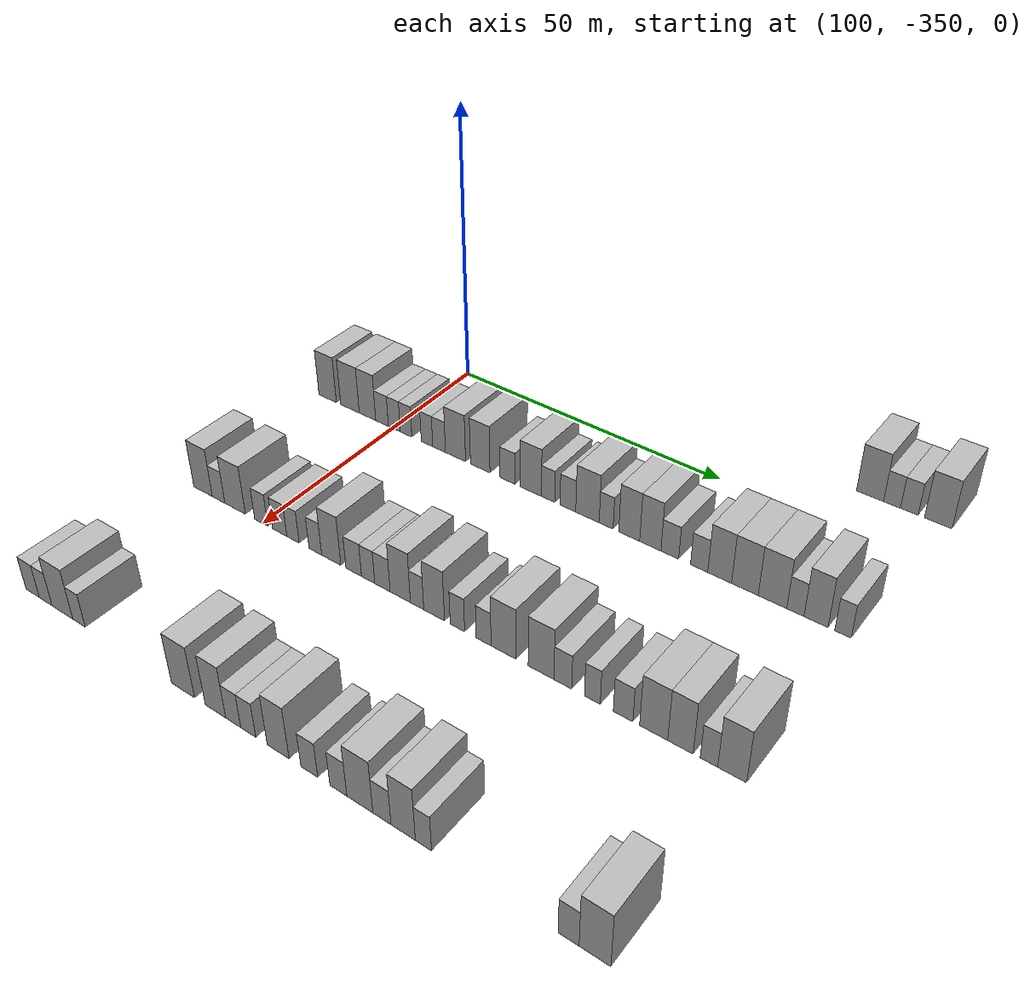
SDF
<sdf version="1.6">
 <world name="default">
  <model name="building_510">
   <static>1</static>
   <pose>85.0000 -279.2322 0 0.000000 0.000000 0.000000</pose>
   <link name="link">
    <pose>0 0 4.50 0 0 0</pose>
    <collision name="collision"><geometry><box><size>10.0000 4.4738 9.0000</size></box></geometry></collision>
    <visual name="visual">
     <cast_shadows>0</cast_shadows>
     <geometry><box><size>10.0000 4.4738 9.0000</size></box></geometry>
     <material>
      <script>
       <uri>model://HANNAS_wall/materials/scripts</uri>
       <uri>model://HANNAS_wall/materials/textures</uri>
       <name>vrc/HANNAS_wall</name>
      </script>
     </material>
    </visual>
   </link>
  </model>
  <model name="building_511">
   <static>1</static>
   <pose>85.0000 -275.6254 0 0.000000 0.000000 0.000000</pose>
   <link name="link">
    <pose>0 0 3.00 0 0 0</pose>
    <collision name="collision"><geometry><box><size>10.0000 2.7398 6.0000</size></box></geometry></collision>
    <visual name="visual">
     <cast_shadows>0</cast_shadows>
     <geometry><box><size>10.0000 2.7398 6.0000</size></box></geometry>
     <material>
      <script>
       <uri>model://HANNAS_wall/materials/scripts</uri>
       <uri>model://HANNAS_wall/materials/textures</uri>
       <name>vrc/HANNAS_wall</name>
      </script>
     </material>
    </visual>
   </link>
  </model>
  <model name="building_512">
   <static>1</static>
   <pose>85.0000 -272.8362 0 0.000000 0.000000 0.000000</pose>
   <link name="link">
    <pose>0 0 3.00 0 0 0</pose>
    <collision name="collision"><geometry><box><size>10.0000 2.8386 6.0000</size></box></geometry></collision>
    <visual name="visual">
     <cast_shadows>0</cast_shadows>
     <geometry><box><size>10.0000 2.8386 6.0000</size></box></geometry>
     <material>
      <script>
       <uri>model://HANNAS_wall/materials/scripts</uri>
       <uri>model://HANNAS_wall/materials/textures</uri>
       <name>vrc/HANNAS_wall</name>
      </script>
     </material>
    </visual>
   </link>
  </model>
  <model name="building_513">
   <static>1</static>
   <pose>85.0000 -268.2514 0 0.000000 0.000000 0.000000</pose>
   <link name="link">
    <pose>0 0 4.50 0 0 0</pose>
    <collision name="collision"><geometry><box><size>10.0000 4.3310 9.0000</size></box></geometry></collision>
    <visual name="visual">
     <cast_shadows>0</cast_shadows>
     <geometry><box><size>10.0000 4.3310 9.0000</size></box></geometry>
     <material>
      <script>
       <uri>model://HANNAS_wall/materials/scripts</uri>
       <uri>model://HANNAS_wall/materials/textures</uri>
       <name>vrc/HANNAS_wall</name>
      </script>
     </material>
    </visual>
   </link>
  </model>
  <model name="building_725">
   <static>1</static>
   <pose>115.0000 -364.7723 0 0.000000 0.000000 0.000000</pose>
   <link name="link">
    <pose>0 0 4.50 0 0 0</pose>
    <collision name="collision"><geometry><box><size>10.0000 3.9995 9.0000</size></box></geometry></collision>
    <visual name="visual">
     <cast_shadows>0</cast_shadows>
     <geometry><box><size>10.0000 3.9995 9.0000</size></box></geometry>
     <material>
      <script>
       <uri>model://HANNAS_wall/materials/scripts</uri>
       <uri>model://HANNAS_wall/materials/textures</uri>
       <name>vrc/HANNAS_wall</name>
      </script>
     </material>
    </visual>
   </link>
  </model>
  <model name="building_726">
   <static>1</static>
   <pose>115.0000 -359.6776 0 0.000000 0.000000 0.000000</pose>
   <link name="link">
    <pose>0 0 4.50 0 0 0</pose>
    <collision name="collision"><geometry><box><size>10.0000 4.1899 9.0000</size></box></geometry></collision>
    <visual name="visual">
     <cast_shadows>0</cast_shadows>
     <geometry><box><size>10.0000 4.1899 9.0000</size></box></geometry>
     <material>
      <script>
       <uri>model://HANNAS_wall/materials/scripts</uri>
       <uri>model://HANNAS_wall/materials/textures</uri>
       <name>vrc/HANNAS_wall</name>
      </script>
     </material>
    </visual>
   </link>
  </model>
  <model name="building_727">
   <static>1</static>
   <pose>115.0000 -355.7517 0 0.000000 0.000000 0.000000</pose>
   <link name="link">
    <pose>0 0 4.50 0 0 0</pose>
    <collision name="collision"><geometry><box><size>10.0000 3.6618 9.0000</size></box></geometry></collision>
    <visual name="visual">
     <cast_shadows>0</cast_shadows>
     <geometry><box><size>10.0000 3.6618 9.0000</size></box></geometry>
     <material>
      <script>
       <uri>model://HANNAS_wall/materials/scripts</uri>
       <uri>model://HANNAS_wall/materials/textures</uri>
       <name>vrc/HANNAS_wall</name>
      </script>
     </material>
    </visual>
   </link>
  </model>
  <model name="building_728">
   <static>1</static>
   <pose>115.0000 -352.5286 0 0.000000 0.000000 0.000000</pose>
   <link name="link">
    <pose>0 0 3.00 0 0 0</pose>
    <collision name="collision"><geometry><box><size>10.0000 2.7844 6.0000</size></box></geometry></collision>
    <visual name="visual">
     <cast_shadows>0</cast_shadows>
     <geometry><box><size>10.0000 2.7844 6.0000</size></box></geometry>
     <material>
      <script>
       <uri>model://HANNAS_wall/materials/scripts</uri>
       <uri>model://HANNAS_wall/materials/textures</uri>
       <name>vrc/HANNAS_wall</name>
      </script>
     </material>
    </visual>
   </link>
  </model>
  <model name="building_729">
   <static>1</static>
   <pose>115.0000 -349.8537 0 0.000000 0.000000 0.000000</pose>
   <link name="link">
    <pose>0 0 3.00 0 0 0</pose>
    <collision name="collision"><geometry><box><size>10.0000 2.5655 6.0000</size></box></geometry></collision>
    <visual name="visual">
     <cast_shadows>0</cast_shadows>
     <geometry><box><size>10.0000 2.5655 6.0000</size></box></geometry>
     <material>
      <script>
       <uri>model://HANNAS_wall/materials/scripts</uri>
       <uri>model://HANNAS_wall/materials/textures</uri>
       <name>vrc/HANNAS_wall</name>
      </script>
     </material>
    </visual>
   </link>
  </model>
  <model name="building_730">
   <static>1</static>
   <pose>115.0000 -347.3311 0 0.000000 0.000000 0.000000</pose>
   <link name="link">
    <pose>0 0 3.00 0 0 0</pose>
    <collision name="collision"><geometry><box><size>10.0000 2.4797 6.0000</size></box></geometry></collision>
    <visual name="visual">
     <cast_shadows>0</cast_shadows>
     <geometry><box><size>10.0000 2.4797 6.0000</size></box></geometry>
     <material>
      <script>
       <uri>model://HANNAS_wall/materials/scripts</uri>
       <uri>model://HANNAS_wall/materials/textures</uri>
       <name>vrc/HANNAS_wall</name>
      </script>
     </material>
    </visual>
   </link>
  </model>
  <model name="building_731">
   <static>1</static>
   <pose>115.0000 -342.8879 0 0.000000 0.000000 0.000000</pose>
   <link name="link">
    <pose>0 0 3.00 0 0 0</pose>
    <collision name="collision"><geometry><box><size>10.0000 2.4067 6.0000</size></box></geometry></collision>
    <visual name="visual">
     <cast_shadows>0</cast_shadows>
     <geometry><box><size>10.0000 2.4067 6.0000</size></box></geometry>
     <material>
      <script>
       <uri>model://HANNAS_wall/materials/scripts</uri>
       <uri>model://HANNAS_wall/materials/textures</uri>
       <name>vrc/HANNAS_wall</name>
      </script>
     </material>
    </visual>
   </link>
  </model>
  <model name="building_732">
   <static>1</static>
   <pose>115.0000 -340.3588 0 0.000000 0.000000 0.000000</pose>
   <link name="link">
    <pose>0 0 3.00 0 0 0</pose>
    <collision name="collision"><geometry><box><size>10.0000 2.6515 6.0000</size></box></geometry></collision>
    <visual name="visual">
     <cast_shadows>0</cast_shadows>
     <geometry><box><size>10.0000 2.6515 6.0000</size></box></geometry>
     <material>
      <script>
       <uri>model://HANNAS_wall/materials/scripts</uri>
       <uri>model://HANNAS_wall/materials/textures</uri>
       <name>vrc/HANNAS_wall</name>
      </script>
     </material>
    </visual>
   </link>
  </model>
  <model name="building_733">
   <static>1</static>
   <pose>115.0000 -336.9789 0 0.000000 0.000000 0.000000</pose>
   <link name="link">
    <pose>0 0 4.50 0 0 0</pose>
    <collision name="collision"><geometry><box><size>10.0000 4.1082 9.0000</size></box></geometry></collision>
    <visual name="visual">
     <cast_shadows>0</cast_shadows>
     <geometry><box><size>10.0000 4.1082 9.0000</size></box></geometry>
     <material>
      <script>
       <uri>model://HANNAS_wall/materials/scripts</uri>
       <uri>model://HANNAS_wall/materials/textures</uri>
       <name>vrc/HANNAS_wall</name>
      </script>
     </material>
    </visual>
   </link>
  </model>
  <model name="building_734">
   <static>1</static>
   <pose>115.0000 -331.9779 0 0.000000 0.000000 0.000000</pose>
   <link name="link">
    <pose>0 0 4.50 0 0 0</pose>
    <collision name="collision"><geometry><box><size>10.0000 3.8938 9.0000</size></box></geometry></collision>
    <visual name="visual">
     <cast_shadows>0</cast_shadows>
     <geometry><box><size>10.0000 3.8938 9.0000</size></box></geometry>
     <material>
      <script>
       <uri>model://HANNAS_wall/materials/scripts</uri>
       <uri>model://HANNAS_wall/materials/textures</uri>
       <name>vrc/HANNAS_wall</name>
      </script>
     </material>
    </visual>
   </link>
  </model>
  <model name="building_735">
   <static>1</static>
   <pose>115.0000 -326.5730 0 0.000000 0.000000 0.000000</pose>
   <link name="link">
    <pose>0 0 3.00 0 0 0</pose>
    <collision name="collision"><geometry><box><size>10.0000 2.9161 6.0000</size></box></geometry></collision>
    <visual name="visual">
     <cast_shadows>0</cast_shadows>
     <geometry><box><size>10.0000 2.9161 6.0000</size></box></geometry>
     <material>
      <script>
       <uri>model://HANNAS_wall/materials/scripts</uri>
       <uri>model://HANNAS_wall/materials/textures</uri>
       <name>vrc/HANNAS_wall</name>
      </script>
     </material>
    </visual>
   </link>
  </model>
  <model name="building_736">
   <static>1</static>
   <pose>115.0000 -322.0862 0 0.000000 0.000000 0.000000</pose>
   <link name="link">
    <pose>0 0 4.50 0 0 0</pose>
    <collision name="collision"><geometry><box><size>10.0000 4.0576 9.0000</size></box></geometry></collision>
    <visual name="visual">
     <cast_shadows>0</cast_shadows>
     <geometry><box><size>10.0000 4.0576 9.0000</size></box></geometry>
     <material>
      <script>
       <uri>model://HANNAS_wall/materials/scripts</uri>
       <uri>model://HANNAS_wall/materials/textures</uri>
       <name>vrc/HANNAS_wall</name>
      </script>
     </material>
    </visual>
   </link>
  </model>
  <model name="building_737">
   <static>1</static>
   <pose>115.0000 -318.8080 0 0.000000 0.000000 0.000000</pose>
   <link name="link">
    <pose>0 0 3.00 0 0 0</pose>
    <collision name="collision"><geometry><box><size>10.0000 2.4987 6.0000</size></box></geometry></collision>
    <visual name="visual">
     <cast_shadows>0</cast_shadows>
     <geometry><box><size>10.0000 2.4987 6.0000</size></box></geometry>
     <material>
      <script>
       <uri>model://HANNAS_wall/materials/scripts</uri>
       <uri>model://HANNAS_wall/materials/textures</uri>
       <name>vrc/HANNAS_wall</name>
      </script>
     </material>
    </visual>
   </link>
  </model>
  <model name="building_738">
   <static>1</static>
   <pose>115.0000 -315.1104 0 0.000000 0.000000 0.000000</pose>
   <link name="link">
    <pose>0 0 3.00 0 0 0</pose>
    <collision name="collision"><geometry><box><size>10.0000 2.8964 6.0000</size></box></geometry></collision>
    <visual name="visual">
     <cast_shadows>0</cast_shadows>
     <geometry><box><size>10.0000 2.8964 6.0000</size></box></geometry>
     <material>
      <script>
       <uri>model://HANNAS_wall/materials/scripts</uri>
       <uri>model://HANNAS_wall/materials/textures</uri>
       <name>vrc/HANNAS_wall</name>
      </script>
     </material>
    </visual>
   </link>
  </model>
  <model name="building_739">
   <static>1</static>
   <pose>115.0000 -311.5254 0 0.000000 0.000000 0.000000</pose>
   <link name="link">
    <pose>0 0 4.50 0 0 0</pose>
    <collision name="collision"><geometry><box><size>10.0000 4.2738 9.0000</size></box></geometry></collision>
    <visual name="visual">
     <cast_shadows>0</cast_shadows>
     <geometry><box><size>10.0000 4.2738 9.0000</size></box></geometry>
     <material>
      <script>
       <uri>model://HANNAS_wall/materials/scripts</uri>
       <uri>model://HANNAS_wall/materials/textures</uri>
       <name>vrc/HANNAS_wall</name>
      </script>
     </material>
    </visual>
   </link>
  </model>
  <model name="building_740">
   <static>1</static>
   <pose>115.0000 -308.1444 0 0.000000 0.000000 0.000000</pose>
   <link name="link">
    <pose>0 0 3.00 0 0 0</pose>
    <collision name="collision"><geometry><box><size>10.0000 2.4882 6.0000</size></box></geometry></collision>
    <visual name="visual">
     <cast_shadows>0</cast_shadows>
     <geometry><box><size>10.0000 2.4882 6.0000</size></box></geometry>
     <material>
      <script>
       <uri>model://HANNAS_wall/materials/scripts</uri>
       <uri>model://HANNAS_wall/materials/textures</uri>
       <name>vrc/HANNAS_wall</name>
      </script>
     </material>
    </visual>
   </link>
  </model>
  <model name="building_741">
   <static>1</static>
   <pose>115.0000 -304.0598 0 0.000000 0.000000 0.000000</pose>
   <link name="link">
    <pose>0 0 4.50 0 0 0</pose>
    <collision name="collision"><geometry><box><size>10.0000 3.6809 9.0000</size></box></geometry></collision>
    <visual name="visual">
     <cast_shadows>0</cast_shadows>
     <geometry><box><size>10.0000 3.6809 9.0000</size></box></geometry>
     <material>
      <script>
       <uri>model://HANNAS_wall/materials/scripts</uri>
       <uri>model://HANNAS_wall/materials/textures</uri>
       <name>vrc/HANNAS_wall</name>
      </script>
     </material>
    </visual>
   </link>
  </model>
  <model name="building_742">
   <static>1</static>
   <pose>115.0000 -300.3858 0 0.000000 0.000000 0.000000</pose>
   <link name="link">
    <pose>0 0 4.50 0 0 0</pose>
    <collision name="collision"><geometry><box><size>10.0000 3.6670 9.0000</size></box></geometry></collision>
    <visual name="visual">
     <cast_shadows>0</cast_shadows>
     <geometry><box><size>10.0000 3.6670 9.0000</size></box></geometry>
     <material>
      <script>
       <uri>model://HANNAS_wall/materials/scripts</uri>
       <uri>model://HANNAS_wall/materials/textures</uri>
       <name>vrc/HANNAS_wall</name>
      </script>
     </material>
    </visual>
   </link>
  </model>
  <model name="building_743">
   <static>1</static>
   <pose>115.0000 -297.0546 0 0.000000 0.000000 0.000000</pose>
   <link name="link">
    <pose>0 0 3.00 0 0 0</pose>
    <collision name="collision"><geometry><box><size>10.0000 2.9954 6.0000</size></box></geometry></collision>
    <visual name="visual">
     <cast_shadows>0</cast_shadows>
     <geometry><box><size>10.0000 2.9954 6.0000</size></box></geometry>
     <material>
      <script>
       <uri>model://HANNAS_wall/materials/scripts</uri>
       <uri>model://HANNAS_wall/materials/textures</uri>
       <name>vrc/HANNAS_wall</name>
      </script>
     </material>
    </visual>
   </link>
  </model>
  <model name="building_744">
   <static>1</static>
   <pose>115.0000 -292.1378 0 0.000000 0.000000 0.000000</pose>
   <link name="link">
    <pose>0 0 3.00 0 0 0</pose>
    <collision name="collision"><geometry><box><size>10.0000 2.8382 6.0000</size></box></geometry></collision>
    <visual name="visual">
     <cast_shadows>0</cast_shadows>
     <geometry><box><size>10.0000 2.8382 6.0000</size></box></geometry>
     <material>
      <script>
       <uri>model://HANNAS_wall/materials/scripts</uri>
       <uri>model://HANNAS_wall/materials/textures</uri>
       <name>vrc/HANNAS_wall</name>
      </script>
     </material>
    </visual>
   </link>
  </model>
  <model name="building_745">
   <static>1</static>
   <pose>115.0000 -288.7767 0 0.000000 0.000000 0.000000</pose>
   <link name="link">
    <pose>0 0 4.50 0 0 0</pose>
    <collision name="collision"><geometry><box><size>10.0000 3.8839 9.0000</size></box></geometry></collision>
    <visual name="visual">
     <cast_shadows>0</cast_shadows>
     <geometry><box><size>10.0000 3.8839 9.0000</size></box></geometry>
     <material>
      <script>
       <uri>model://HANNAS_wall/materials/scripts</uri>
       <uri>model://HANNAS_wall/materials/textures</uri>
       <name>vrc/HANNAS_wall</name>
      </script>
     </material>
    </visual>
   </link>
  </model>
  <model name="building_746">
   <static>1</static>
   <pose>115.0000 -284.7087 0 0.000000 0.000000 0.000000</pose>
   <link name="link">
    <pose>0 0 4.50 0 0 0</pose>
    <collision name="collision"><geometry><box><size>10.0000 4.2521 9.0000</size></box></geometry></collision>
    <visual name="visual">
     <cast_shadows>0</cast_shadows>
     <geometry><box><size>10.0000 4.2521 9.0000</size></box></geometry>
     <material>
      <script>
       <uri>model://HANNAS_wall/materials/scripts</uri>
       <uri>model://HANNAS_wall/materials/textures</uri>
       <name>vrc/HANNAS_wall</name>
      </script>
     </material>
    </visual>
   </link>
  </model>
  <model name="building_747">
   <static>1</static>
   <pose>115.0000 -280.3536 0 0.000000 0.000000 0.000000</pose>
   <link name="link">
    <pose>0 0 4.50 0 0 0</pose>
    <collision name="collision"><geometry><box><size>10.0000 4.4581 9.0000</size></box></geometry></collision>
    <visual name="visual">
     <cast_shadows>0</cast_shadows>
     <geometry><box><size>10.0000 4.4581 9.0000</size></box></geometry>
     <material>
      <script>
       <uri>model://HANNAS_wall/materials/scripts</uri>
       <uri>model://HANNAS_wall/materials/textures</uri>
       <name>vrc/HANNAS_wall</name>
      </script>
     </material>
    </visual>
   </link>
  </model>
  <model name="building_748">
   <static>1</static>
   <pose>115.0000 -276.8065 0 0.000000 0.000000 0.000000</pose>
   <link name="link">
    <pose>0 0 3.00 0 0 0</pose>
    <collision name="collision"><geometry><box><size>10.0000 2.6362 6.0000</size></box></geometry></collision>
    <visual name="visual">
     <cast_shadows>0</cast_shadows>
     <geometry><box><size>10.0000 2.6362 6.0000</size></box></geometry>
     <material>
      <script>
       <uri>model://HANNAS_wall/materials/scripts</uri>
       <uri>model://HANNAS_wall/materials/textures</uri>
       <name>vrc/HANNAS_wall</name>
      </script>
     </material>
    </visual>
   </link>
  </model>
  <model name="building_749">
   <static>1</static>
   <pose>115.0000 -273.6818 0 0.000000 0.000000 0.000000</pose>
   <link name="link">
    <pose>0 0 4.50 0 0 0</pose>
    <collision name="collision"><geometry><box><size>10.0000 3.6133 9.0000</size></box></geometry></collision>
    <visual name="visual">
     <cast_shadows>0</cast_shadows>
     <geometry><box><size>10.0000 3.6133 9.0000</size></box></geometry>
     <material>
      <script>
       <uri>model://HANNAS_wall/materials/scripts</uri>
       <uri>model://HANNAS_wall/materials/textures</uri>
       <name>vrc/HANNAS_wall</name>
      </script>
     </material>
    </visual>
   </link>
  </model>
  <model name="building_750">
   <static>1</static>
   <pose>115.0000 -269.6602 0 0.000000 0.000000 0.000000</pose>
   <link name="link">
    <pose>0 0 3.00 0 0 0</pose>
    <collision name="collision"><geometry><box><size>10.0000 2.4300 6.0000</size></box></geometry></collision>
    <visual name="visual">
     <cast_shadows>0</cast_shadows>
     <geometry><box><size>10.0000 2.4300 6.0000</size></box></geometry>
     <material>
      <script>
       <uri>model://HANNAS_wall/materials/scripts</uri>
       <uri>model://HANNAS_wall/materials/textures</uri>
       <name>vrc/HANNAS_wall</name>
      </script>
     </material>
    </visual>
   </link>
  </model>
  <model name="building_956">
   <static>1</static>
   <pose>145.0000 -362.9997 0 0.000000 0.000000 0.000000</pose>
   <link name="link">
    <pose>0 0 4.50 0 0 0</pose>
    <collision name="collision"><geometry><box><size>10.0000 4.0976 9.0000</size></box></geometry></collision>
    <visual name="visual">
     <cast_shadows>0</cast_shadows>
     <geometry><box><size>10.0000 4.0976 9.0000</size></box></geometry>
     <material>
      <script>
       <uri>model://HANNAS_wall/materials/scripts</uri>
       <uri>model://HANNAS_wall/materials/textures</uri>
       <name>vrc/HANNAS_wall</name>
      </script>
     </material>
    </visual>
   </link>
  </model>
  <model name="building_957">
   <static>1</static>
   <pose>145.0000 -359.5647 0 0.000000 0.000000 0.000000</pose>
   <link name="link">
    <pose>0 0 3.00 0 0 0</pose>
    <collision name="collision"><geometry><box><size>10.0000 2.7725 6.0000</size></box></geometry></collision>
    <visual name="visual">
     <cast_shadows>0</cast_shadows>
     <geometry><box><size>10.0000 2.7725 6.0000</size></box></geometry>
     <material>
      <script>
       <uri>model://HANNAS_wall/materials/scripts</uri>
       <uri>model://HANNAS_wall/materials/textures</uri>
       <name>vrc/HANNAS_wall</name>
      </script>
     </material>
    </visual>
   </link>
  </model>
  <model name="building_958">
   <static>1</static>
   <pose>145.0000 -355.9636 0 0.000000 0.000000 0.000000</pose>
   <link name="link">
    <pose>0 0 4.50 0 0 0</pose>
    <collision name="collision"><geometry><box><size>10.0000 4.4298 9.0000</size></box></geometry></collision>
    <visual name="visual">
     <cast_shadows>0</cast_shadows>
     <geometry><box><size>10.0000 4.4298 9.0000</size></box></geometry>
     <material>
      <script>
       <uri>model://HANNAS_wall/materials/scripts</uri>
       <uri>model://HANNAS_wall/materials/textures</uri>
       <name>vrc/HANNAS_wall</name>
      </script>
     </material>
    </visual>
   </link>
  </model>
  <model name="building_959">
   <static>1</static>
   <pose>145.0000 -350.3635 0 0.000000 0.000000 0.000000</pose>
   <link name="link">
    <pose>0 0 3.00 0 0 0</pose>
    <collision name="collision"><geometry><box><size>10.0000 2.7702 6.0000</size></box></geometry></collision>
    <visual name="visual">
     <cast_shadows>0</cast_shadows>
     <geometry><box><size>10.0000 2.7702 6.0000</size></box></geometry>
     <material>
      <script>
       <uri>model://HANNAS_wall/materials/scripts</uri>
       <uri>model://HANNAS_wall/materials/textures</uri>
       <name>vrc/HANNAS_wall</name>
      </script>
     </material>
    </visual>
   </link>
  </model>
  <model name="building_960">
   <static>1</static>
   <pose>145.0000 -346.4990 0 0.000000 0.000000 0.000000</pose>
   <link name="link">
    <pose>0 0 3.00 0 0 0</pose>
    <collision name="collision"><geometry><box><size>10.0000 2.9588 6.0000</size></box></geometry></collision>
    <visual name="visual">
     <cast_shadows>0</cast_shadows>
     <geometry><box><size>10.0000 2.9588 6.0000</size></box></geometry>
     <material>
      <script>
       <uri>model://HANNAS_wall/materials/scripts</uri>
       <uri>model://HANNAS_wall/materials/textures</uri>
       <name>vrc/HANNAS_wall</name>
      </script>
     </material>
    </visual>
   </link>
  </model>
  <model name="building_961">
   <static>1</static>
   <pose>145.0000 -343.7650 0 0.000000 0.000000 0.000000</pose>
   <link name="link">
    <pose>0 0 3.00 0 0 0</pose>
    <collision name="collision"><geometry><box><size>10.0000 2.5093 6.0000</size></box></geometry></collision>
    <visual name="visual">
     <cast_shadows>0</cast_shadows>
     <geometry><box><size>10.0000 2.5093 6.0000</size></box></geometry>
     <material>
      <script>
       <uri>model://HANNAS_wall/materials/scripts</uri>
       <uri>model://HANNAS_wall/materials/textures</uri>
       <name>vrc/HANNAS_wall</name>
      </script>
     </material>
    </visual>
   </link>
  </model>
  <model name="building_962">
   <static>1</static>
   <pose>145.0000 -339.2506 0 0.000000 0.000000 0.000000</pose>
   <link name="link">
    <pose>0 0 3.00 0 0 0</pose>
    <collision name="collision"><geometry><box><size>10.0000 2.5195 6.0000</size></box></geometry></collision>
    <visual name="visual">
     <cast_shadows>0</cast_shadows>
     <geometry><box><size>10.0000 2.5195 6.0000</size></box></geometry>
     <material>
      <script>
       <uri>model://HANNAS_wall/materials/scripts</uri>
       <uri>model://HANNAS_wall/materials/textures</uri>
       <name>vrc/HANNAS_wall</name>
      </script>
     </material>
    </visual>
   </link>
  </model>
  <model name="building_963">
   <static>1</static>
   <pose>145.0000 -336.1108 0 0.000000 0.000000 0.000000</pose>
   <link name="link">
    <pose>0 0 4.50 0 0 0</pose>
    <collision name="collision"><geometry><box><size>10.0000 3.7602 9.0000</size></box></geometry></collision>
    <visual name="visual">
     <cast_shadows>0</cast_shadows>
     <geometry><box><size>10.0000 3.7602 9.0000</size></box></geometry>
     <material>
      <script>
       <uri>model://HANNAS_wall/materials/scripts</uri>
       <uri>model://HANNAS_wall/materials/textures</uri>
       <name>vrc/HANNAS_wall</name>
      </script>
     </material>
    </visual>
   </link>
  </model>
  <model name="building_964">
   <static>1</static>
   <pose>145.0000 -331.7360 0 0.000000 0.000000 0.000000</pose>
   <link name="link">
    <pose>0 0 3.00 0 0 0</pose>
    <collision name="collision"><geometry><box><size>10.0000 2.9893 6.0000</size></box></geometry></collision>
    <visual name="visual">
     <cast_shadows>0</cast_shadows>
     <geometry><box><size>10.0000 2.9893 6.0000</size></box></geometry>
     <material>
      <script>
       <uri>model://HANNAS_wall/materials/scripts</uri>
       <uri>model://HANNAS_wall/materials/textures</uri>
       <name>vrc/HANNAS_wall</name>
      </script>
     </material>
    </visual>
   </link>
  </model>
  <model name="building_965">
   <static>1</static>
   <pose>145.0000 -328.9768 0 0.000000 0.000000 0.000000</pose>
   <link name="link">
    <pose>0 0 3.00 0 0 0</pose>
    <collision name="collision"><geometry><box><size>10.0000 2.5293 6.0000</size></box></geometry></collision>
    <visual name="visual">
     <cast_shadows>0</cast_shadows>
     <geometry><box><size>10.0000 2.5293 6.0000</size></box></geometry>
     <material>
      <script>
       <uri>model://HANNAS_wall/materials/scripts</uri>
       <uri>model://HANNAS_wall/materials/textures</uri>
       <name>vrc/HANNAS_wall</name>
      </script>
     </material>
    </visual>
   </link>
  </model>
  <model name="building_966">
   <static>1</static>
   <pose>145.0000 -326.2805 0 0.000000 0.000000 0.000000</pose>
   <link name="link">
    <pose>0 0 3.00 0 0 0</pose>
    <collision name="collision"><geometry><box><size>10.0000 2.8632 6.0000</size></box></geometry></collision>
    <visual name="visual">
     <cast_shadows>0</cast_shadows>
     <geometry><box><size>10.0000 2.8632 6.0000</size></box></geometry>
     <material>
      <script>
       <uri>model://HANNAS_wall/materials/scripts</uri>
       <uri>model://HANNAS_wall/materials/textures</uri>
       <name>vrc/HANNAS_wall</name>
      </script>
     </material>
    </visual>
   </link>
  </model>
  <model name="building_967">
   <static>1</static>
   <pose>145.0000 -322.9799 0 0.000000 0.000000 0.000000</pose>
   <link name="link">
    <pose>0 0 4.50 0 0 0</pose>
    <collision name="collision"><geometry><box><size>10.0000 3.7378 9.0000</size></box></geometry></collision>
    <visual name="visual">
     <cast_shadows>0</cast_shadows>
     <geometry><box><size>10.0000 3.7378 9.0000</size></box></geometry>
     <material>
      <script>
       <uri>model://HANNAS_wall/materials/scripts</uri>
       <uri>model://HANNAS_wall/materials/textures</uri>
       <name>vrc/HANNAS_wall</name>
      </script>
     </material>
    </visual>
   </link>
  </model>
  <model name="building_968">
   <static>1</static>
   <pose>145.0000 -319.8998 0 0.000000 0.000000 0.000000</pose>
   <link name="link">
    <pose>0 0 3.00 0 0 0</pose>
    <collision name="collision"><geometry><box><size>10.0000 2.4224 6.0000</size></box></geometry></collision>
    <visual name="visual">
     <cast_shadows>0</cast_shadows>
     <geometry><box><size>10.0000 2.4224 6.0000</size></box></geometry>
     <material>
      <script>
       <uri>model://HANNAS_wall/materials/scripts</uri>
       <uri>model://HANNAS_wall/materials/textures</uri>
       <name>vrc/HANNAS_wall</name>
      </script>
     </material>
    </visual>
   </link>
  </model>
  <model name="building_969">
   <static>1</static>
   <pose>145.0000 -316.8396 0 0.000000 0.000000 0.000000</pose>
   <link name="link">
    <pose>0 0 4.50 0 0 0</pose>
    <collision name="collision"><geometry><box><size>10.0000 3.6981 9.0000</size></box></geometry></collision>
    <visual name="visual">
     <cast_shadows>0</cast_shadows>
     <geometry><box><size>10.0000 3.6981 9.0000</size></box></geometry>
     <material>
      <script>
       <uri>model://HANNAS_wall/materials/scripts</uri>
       <uri>model://HANNAS_wall/materials/textures</uri>
       <name>vrc/HANNAS_wall</name>
      </script>
     </material>
    </visual>
   </link>
  </model>
  <model name="building_970">
   <static>1</static>
   <pose>145.0000 -312.7343 0 0.000000 0.000000 0.000000</pose>
   <link name="link">
    <pose>0 0 3.00 0 0 0</pose>
    <collision name="collision"><geometry><box><size>10.0000 2.5123 6.0000</size></box></geometry></collision>
    <visual name="visual">
     <cast_shadows>0</cast_shadows>
     <geometry><box><size>10.0000 2.5123 6.0000</size></box></geometry>
     <material>
      <script>
       <uri>model://HANNAS_wall/materials/scripts</uri>
       <uri>model://HANNAS_wall/materials/textures</uri>
       <name>vrc/HANNAS_wall</name>
      </script>
     </material>
    </visual>
   </link>
  </model>
  <model name="building_971">
   <static>1</static>
   <pose>145.0000 -308.2116 0 0.000000 0.000000 0.000000</pose>
   <link name="link">
    <pose>0 0 3.00 0 0 0</pose>
    <collision name="collision"><geometry><box><size>10.0000 2.5331 6.0000</size></box></geometry></collision>
    <visual name="visual">
     <cast_shadows>0</cast_shadows>
     <geometry><box><size>10.0000 2.5331 6.0000</size></box></geometry>
     <material>
      <script>
       <uri>model://HANNAS_wall/materials/scripts</uri>
       <uri>model://HANNAS_wall/materials/textures</uri>
       <name>vrc/HANNAS_wall</name>
      </script>
     </material>
    </visual>
   </link>
  </model>
  <model name="building_972">
   <static>1</static>
   <pose>145.0000 -304.8578 0 0.000000 0.000000 0.000000</pose>
   <link name="link">
    <pose>0 0 4.50 0 0 0</pose>
    <collision name="collision"><geometry><box><size>10.0000 4.1745 9.0000</size></box></geometry></collision>
    <visual name="visual">
     <cast_shadows>0</cast_shadows>
     <geometry><box><size>10.0000 4.1745 9.0000</size></box></geometry>
     <material>
      <script>
       <uri>model://HANNAS_wall/materials/scripts</uri>
       <uri>model://HANNAS_wall/materials/textures</uri>
       <name>vrc/HANNAS_wall</name>
      </script>
     </material>
    </visual>
   </link>
  </model>
  <model name="building_973">
   <static>1</static>
   <pose>145.0000 -298.6813 0 0.000000 0.000000 0.000000</pose>
   <link name="link">
    <pose>0 0 4.50 0 0 0</pose>
    <collision name="collision"><geometry><box><size>10.0000 4.1785 9.0000</size></box></geometry></collision>
    <visual name="visual">
     <cast_shadows>0</cast_shadows>
     <geometry><box><size>10.0000 4.1785 9.0000</size></box></geometry>
     <material>
      <script>
       <uri>model://HANNAS_wall/materials/scripts</uri>
       <uri>model://HANNAS_wall/materials/textures</uri>
       <name>vrc/HANNAS_wall</name>
      </script>
     </material>
    </visual>
   </link>
  </model>
  <model name="building_974">
   <static>1</static>
   <pose>145.0000 -295.1901 0 0.000000 0.000000 0.000000</pose>
   <link name="link">
    <pose>0 0 3.00 0 0 0</pose>
    <collision name="collision"><geometry><box><size>10.0000 2.8040 6.0000</size></box></geometry></collision>
    <visual name="visual">
     <cast_shadows>0</cast_shadows>
     <geometry><box><size>10.0000 2.8040 6.0000</size></box></geometry>
     <material>
      <script>
       <uri>model://HANNAS_wall/materials/scripts</uri>
       <uri>model://HANNAS_wall/materials/textures</uri>
       <name>vrc/HANNAS_wall</name>
      </script>
     </material>
    </visual>
   </link>
  </model>
  <model name="building_975">
   <static>1</static>
   <pose>145.0000 -290.5666 0 0.000000 0.000000 0.000000</pose>
   <link name="link">
    <pose>0 0 3.00 0 0 0</pose>
    <collision name="collision"><geometry><box><size>10.0000 2.4429 6.0000</size></box></geometry></collision>
    <visual name="visual">
     <cast_shadows>0</cast_shadows>
     <geometry><box><size>10.0000 2.4429 6.0000</size></box></geometry>
     <material>
      <script>
       <uri>model://HANNAS_wall/materials/scripts</uri>
       <uri>model://HANNAS_wall/materials/textures</uri>
       <name>vrc/HANNAS_wall</name>
      </script>
     </material>
    </visual>
   </link>
  </model>
  <model name="building_976">
   <static>1</static>
   <pose>145.0000 -285.8711 0 0.000000 0.000000 0.000000</pose>
   <link name="link">
    <pose>0 0 3.00 0 0 0</pose>
    <collision name="collision"><geometry><box><size>10.0000 2.9480 6.0000</size></box></geometry></collision>
    <visual name="visual">
     <cast_shadows>0</cast_shadows>
     <geometry><box><size>10.0000 2.9480 6.0000</size></box></geometry>
     <material>
      <script>
       <uri>model://HANNAS_wall/materials/scripts</uri>
       <uri>model://HANNAS_wall/materials/textures</uri>
       <name>vrc/HANNAS_wall</name>
      </script>
     </material>
    </visual>
   </link>
  </model>
  <model name="building_977">
   <static>1</static>
   <pose>145.0000 -281.3310 0 0.000000 0.000000 0.000000</pose>
   <link name="link">
    <pose>0 0 4.50 0 0 0</pose>
    <collision name="collision"><geometry><box><size>10.0000 4.1322 9.0000</size></box></geometry></collision>
    <visual name="visual">
     <cast_shadows>0</cast_shadows>
     <geometry><box><size>10.0000 4.1322 9.0000</size></box></geometry>
     <material>
      <script>
       <uri>model://HANNAS_wall/materials/scripts</uri>
       <uri>model://HANNAS_wall/materials/textures</uri>
       <name>vrc/HANNAS_wall</name>
      </script>
     </material>
    </visual>
   </link>
  </model>
  <model name="building_978">
   <static>1</static>
   <pose>145.0000 -277.4424 0 0.000000 0.000000 0.000000</pose>
   <link name="link">
    <pose>0 0 4.50 0 0 0</pose>
    <collision name="collision"><geometry><box><size>10.0000 3.6450 9.0000</size></box></geometry></collision>
    <visual name="visual">
     <cast_shadows>0</cast_shadows>
     <geometry><box><size>10.0000 3.6450 9.0000</size></box></geometry>
     <material>
      <script>
       <uri>model://HANNAS_wall/materials/scripts</uri>
       <uri>model://HANNAS_wall/materials/textures</uri>
       <name>vrc/HANNAS_wall</name>
      </script>
     </material>
    </visual>
   </link>
  </model>
  <model name="building_979">
   <static>1</static>
   <pose>145.0000 -273.3904 0 0.000000 0.000000 0.000000</pose>
   <link name="link">
    <pose>0 0 3.00 0 0 0</pose>
    <collision name="collision"><geometry><box><size>10.0000 2.4591 6.0000</size></box></geometry></collision>
    <visual name="visual">
     <cast_shadows>0</cast_shadows>
     <geometry><box><size>10.0000 2.4591 6.0000</size></box></geometry>
     <material>
      <script>
       <uri>model://HANNAS_wall/materials/scripts</uri>
       <uri>model://HANNAS_wall/materials/textures</uri>
       <name>vrc/HANNAS_wall</name>
      </script>
     </material>
    </visual>
   </link>
  </model>
  <model name="building_980">
   <static>1</static>
   <pose>145.0000 -270.1669 0 0.000000 0.000000 0.000000</pose>
   <link name="link">
    <pose>0 0 4.50 0 0 0</pose>
    <collision name="collision"><geometry><box><size>10.0000 3.9878 9.0000</size></box></geometry></collision>
    <visual name="visual">
     <cast_shadows>0</cast_shadows>
     <geometry><box><size>10.0000 3.9878 9.0000</size></box></geometry>
     <material>
      <script>
       <uri>model://HANNAS_wall/materials/scripts</uri>
       <uri>model://HANNAS_wall/materials/textures</uri>
       <name>vrc/HANNAS_wall</name>
      </script>
     </material>
    </visual>
   </link>
  </model>
  <model name="building_1184">
   <static>1</static>
   <pose>175.0000 -365.2638 0 0.000000 0.000000 0.000000</pose>
   <link name="link">
    <pose>0 0 3.00 0 0 0</pose>
    <collision name="collision"><geometry><box><size>10.0000 2.9661 6.0000</size></box></geometry></collision>
    <visual name="visual">
     <cast_shadows>0</cast_shadows>
     <geometry><box><size>10.0000 2.9661 6.0000</size></box></geometry>
     <material>
      <script>
       <uri>model://HANNAS_wall/materials/scripts</uri>
       <uri>model://HANNAS_wall/materials/textures</uri>
       <name>vrc/HANNAS_wall</name>
      </script>
     </material>
    </visual>
   </link>
  </model>
  <model name="building_1185">
   <static>1</static>
   <pose>175.0000 -362.3855 0 0.000000 0.000000 0.000000</pose>
   <link name="link">
    <pose>0 0 3.00 0 0 0</pose>
    <collision name="collision"><geometry><box><size>10.0000 2.7906 6.0000</size></box></geometry></collision>
    <visual name="visual">
     <cast_shadows>0</cast_shadows>
     <geometry><box><size>10.0000 2.7906 6.0000</size></box></geometry>
     <material>
      <script>
       <uri>model://HANNAS_wall/materials/scripts</uri>
       <uri>model://HANNAS_wall/materials/textures</uri>
       <name>vrc/HANNAS_wall</name>
      </script>
     </material>
    </visual>
   </link>
  </model>
  <model name="building_1186">
   <static>1</static>
   <pose>175.0000 -358.7495 0 0.000000 0.000000 0.000000</pose>
   <link name="link">
    <pose>0 0 4.50 0 0 0</pose>
    <collision name="collision"><geometry><box><size>10.0000 4.4814 9.0000</size></box></geometry></collision>
    <visual name="visual">
     <cast_shadows>0</cast_shadows>
     <geometry><box><size>10.0000 4.4814 9.0000</size></box></geometry>
     <material>
      <script>
       <uri>model://HANNAS_wall/materials/scripts</uri>
       <uri>model://HANNAS_wall/materials/textures</uri>
       <name>vrc/HANNAS_wall</name>
      </script>
     </material>
    </visual>
   </link>
  </model>
  <model name="building_1187">
   <static>1</static>
   <pose>175.0000 -355.1927 0 0.000000 0.000000 0.000000</pose>
   <link name="link">
    <pose>0 0 3.00 0 0 0</pose>
    <collision name="collision"><geometry><box><size>10.0000 2.6322 6.0000</size></box></geometry></collision>
    <visual name="visual">
     <cast_shadows>0</cast_shadows>
     <geometry><box><size>10.0000 2.6322 6.0000</size></box></geometry>
     <material>
      <script>
       <uri>model://HANNAS_wall/materials/scripts</uri>
       <uri>model://HANNAS_wall/materials/textures</uri>
       <name>vrc/HANNAS_wall</name>
      </script>
     </material>
    </visual>
   </link>
  </model>
  <model name="building_1188">
   <static>1</static>
   <pose>175.0000 -334.3372 0 0.000000 0.000000 0.000000</pose>
   <link name="link">
    <pose>0 0 4.50 0 0 0</pose>
    <collision name="collision"><geometry><box><size>10.0000 4.3596 9.0000</size></box></geometry></collision>
    <visual name="visual">
     <cast_shadows>0</cast_shadows>
     <geometry><box><size>10.0000 4.3596 9.0000</size></box></geometry>
     <material>
      <script>
       <uri>model://HANNAS_wall/materials/scripts</uri>
       <uri>model://HANNAS_wall/materials/textures</uri>
       <name>vrc/HANNAS_wall</name>
      </script>
     </material>
    </visual>
   </link>
  </model>
  <model name="building_1189">
   <static>1</static>
   <pose>175.0000 -328.2819 0 0.000000 0.000000 0.000000</pose>
   <link name="link">
    <pose>0 0 4.50 0 0 0</pose>
    <collision name="collision"><geometry><box><size>10.0000 3.7511 9.0000</size></box></geometry></collision>
    <visual name="visual">
     <cast_shadows>0</cast_shadows>
     <geometry><box><size>10.0000 3.7511 9.0000</size></box></geometry>
     <material>
      <script>
       <uri>model://HANNAS_wall/materials/scripts</uri>
       <uri>model://HANNAS_wall/materials/textures</uri>
       <name>vrc/HANNAS_wall</name>
      </script>
     </material>
    </visual>
   </link>
  </model>
  <model name="building_1190">
   <static>1</static>
   <pose>175.0000 -325.0511 0 0.000000 0.000000 0.000000</pose>
   <link name="link">
    <pose>0 0 3.00 0 0 0</pose>
    <collision name="collision"><geometry><box><size>10.0000 2.7106 6.0000</size></box></geometry></collision>
    <visual name="visual">
     <cast_shadows>0</cast_shadows>
     <geometry><box><size>10.0000 2.7106 6.0000</size></box></geometry>
     <material>
      <script>
       <uri>model://HANNAS_wall/materials/scripts</uri>
       <uri>model://HANNAS_wall/materials/textures</uri>
       <name>vrc/HANNAS_wall</name>
      </script>
     </material>
    </visual>
   </link>
  </model>
  <model name="building_1191">
   <static>1</static>
   <pose>175.0000 -322.3684 0 0.000000 0.000000 0.000000</pose>
   <link name="link">
    <pose>0 0 3.00 0 0 0</pose>
    <collision name="collision"><geometry><box><size>10.0000 2.6548 6.0000</size></box></geometry></collision>
    <visual name="visual">
     <cast_shadows>0</cast_shadows>
     <geometry><box><size>10.0000 2.6548 6.0000</size></box></geometry>
     <material>
      <script>
       <uri>model://HANNAS_wall/materials/scripts</uri>
       <uri>model://HANNAS_wall/materials/textures</uri>
       <name>vrc/HANNAS_wall</name>
      </script>
     </material>
    </visual>
   </link>
  </model>
  <model name="building_1192">
   <static>1</static>
   <pose>175.0000 -317.1638 0 0.000000 0.000000 0.000000</pose>
   <link name="link">
    <pose>0 0 4.50 0 0 0</pose>
    <collision name="collision"><geometry><box><size>10.0000 3.7543 9.0000</size></box></geometry></collision>
    <visual name="visual">
     <cast_shadows>0</cast_shadows>
     <geometry><box><size>10.0000 3.7543 9.0000</size></box></geometry>
     <material>
      <script>
       <uri>model://HANNAS_wall/materials/scripts</uri>
       <uri>model://HANNAS_wall/materials/textures</uri>
       <name>vrc/HANNAS_wall</name>
      </script>
     </material>
    </visual>
   </link>
  </model>
  <model name="building_1193">
   <static>1</static>
   <pose>175.0000 -311.8871 0 0.000000 0.000000 0.000000</pose>
   <link name="link">
    <pose>0 0 3.00 0 0 0</pose>
    <collision name="collision"><geometry><box><size>10.0000 2.7992 6.0000</size></box></geometry></collision>
    <visual name="visual">
     <cast_shadows>0</cast_shadows>
     <geometry><box><size>10.0000 2.7992 6.0000</size></box></geometry>
     <material>
      <script>
       <uri>model://HANNAS_wall/materials/scripts</uri>
       <uri>model://HANNAS_wall/materials/textures</uri>
       <name>vrc/HANNAS_wall</name>
      </script>
     </material>
    </visual>
   </link>
  </model>
  <model name="building_1194">
   <static>1</static>
   <pose>175.0000 -307.1126 0 0.000000 0.000000 0.000000</pose>
   <link name="link">
    <pose>0 0 3.00 0 0 0</pose>
    <collision name="collision"><geometry><box><size>10.0000 2.7497 6.0000</size></box></geometry></collision>
    <visual name="visual">
     <cast_shadows>0</cast_shadows>
     <geometry><box><size>10.0000 2.7497 6.0000</size></box></geometry>
     <material>
      <script>
       <uri>model://HANNAS_wall/materials/scripts</uri>
       <uri>model://HANNAS_wall/materials/textures</uri>
       <name>vrc/HANNAS_wall</name>
      </script>
     </material>
    </visual>
   </link>
  </model>
  <model name="building_1195">
   <static>1</static>
   <pose>175.0000 -303.6713 0 0.000000 0.000000 0.000000</pose>
   <link name="link">
    <pose>0 0 4.50 0 0 0</pose>
    <collision name="collision"><geometry><box><size>10.0000 4.1330 9.0000</size></box></geometry></collision>
    <visual name="visual">
     <cast_shadows>0</cast_shadows>
     <geometry><box><size>10.0000 4.1330 9.0000</size></box></geometry>
     <material>
      <script>
       <uri>model://HANNAS_wall/materials/scripts</uri>
       <uri>model://HANNAS_wall/materials/textures</uri>
       <name>vrc/HANNAS_wall</name>
      </script>
     </material>
    </visual>
   </link>
  </model>
  <model name="building_1196">
   <static>1</static>
   <pose>175.0000 -300.2007 0 0.000000 0.000000 0.000000</pose>
   <link name="link">
    <pose>0 0 3.00 0 0 0</pose>
    <collision name="collision"><geometry><box><size>10.0000 2.8082 6.0000</size></box></geometry></collision>
    <visual name="visual">
     <cast_shadows>0</cast_shadows>
     <geometry><box><size>10.0000 2.8082 6.0000</size></box></geometry>
     <material>
      <script>
       <uri>model://HANNAS_wall/materials/scripts</uri>
       <uri>model://HANNAS_wall/materials/textures</uri>
       <name>vrc/HANNAS_wall</name>
      </script>
     </material>
    </visual>
   </link>
  </model>
  <model name="building_1197">
   <static>1</static>
   <pose>175.0000 -296.9432 0 0.000000 0.000000 0.000000</pose>
   <link name="link">
    <pose>0 0 4.50 0 0 0</pose>
    <collision name="collision"><geometry><box><size>10.0000 3.7067 9.0000</size></box></geometry></collision>
    <visual name="visual">
     <cast_shadows>0</cast_shadows>
     <geometry><box><size>10.0000 3.7067 9.0000</size></box></geometry>
     <material>
      <script>
       <uri>model://HANNAS_wall/materials/scripts</uri>
       <uri>model://HANNAS_wall/materials/textures</uri>
       <name>vrc/HANNAS_wall</name>
      </script>
     </material>
    </visual>
   </link>
  </model>
  <model name="building_1198">
   <static>1</static>
   <pose>175.0000 -293.8842 0 0.000000 0.000000 0.000000</pose>
   <link name="link">
    <pose>0 0 3.00 0 0 0</pose>
    <collision name="collision"><geometry><box><size>10.0000 2.4113 6.0000</size></box></geometry></collision>
    <visual name="visual">
     <cast_shadows>0</cast_shadows>
     <geometry><box><size>10.0000 2.4113 6.0000</size></box></geometry>
     <material>
      <script>
       <uri>model://HANNAS_wall/materials/scripts</uri>
       <uri>model://HANNAS_wall/materials/textures</uri>
       <name>vrc/HANNAS_wall</name>
      </script>
     </material>
    </visual>
   </link>
  </model>
  <model name="building_1199">
   <static>1</static>
   <pose>175.0000 -273.5771 0 0.000000 0.000000 0.000000</pose>
   <link name="link">
    <pose>0 0 3.00 0 0 0</pose>
    <collision name="collision"><geometry><box><size>10.0000 2.7343 6.0000</size></box></geometry></collision>
    <visual name="visual">
     <cast_shadows>0</cast_shadows>
     <geometry><box><size>10.0000 2.7343 6.0000</size></box></geometry>
     <material>
      <script>
       <uri>model://HANNAS_wall/materials/scripts</uri>
       <uri>model://HANNAS_wall/materials/textures</uri>
       <name>vrc/HANNAS_wall</name>
      </script>
     </material>
    </visual>
   </link>
  </model>
  <model name="building_1200">
   <static>1</static>
   <pose>175.0000 -270.1726 0 0.000000 0.000000 0.000000</pose>
   <link name="link">
    <pose>0 0 4.50 0 0 0</pose>
    <collision name="collision"><geometry><box><size>10.0000 4.0748 9.0000</size></box></geometry></collision>
    <visual name="visual">
     <cast_shadows>0</cast_shadows>
     <geometry><box><size>10.0000 4.0748 9.0000</size></box></geometry>
     <material>
      <script>
       <uri>model://HANNAS_wall/materials/scripts</uri>
       <uri>model://HANNAS_wall/materials/textures</uri>
       <name>vrc/HANNAS_wall</name>
      </script>
     </material>
    </visual>
   </link>
  </model>
 </world>
</sdf>
